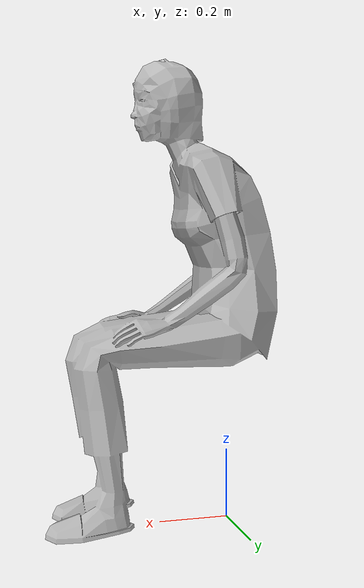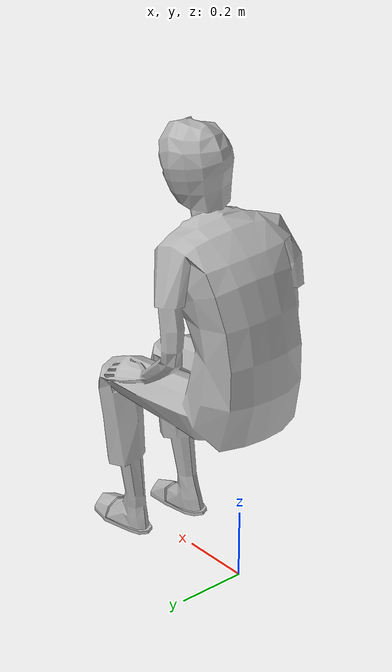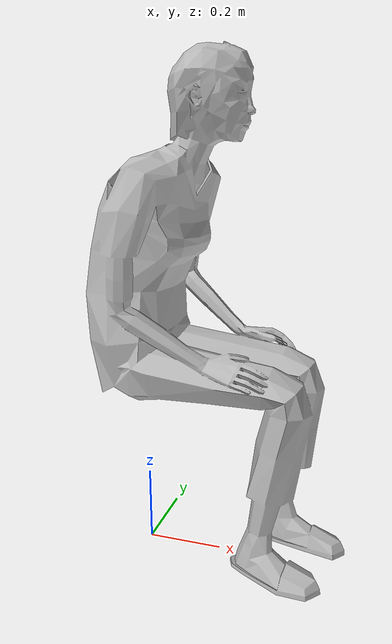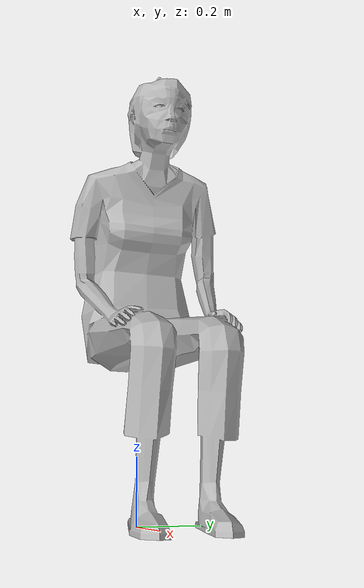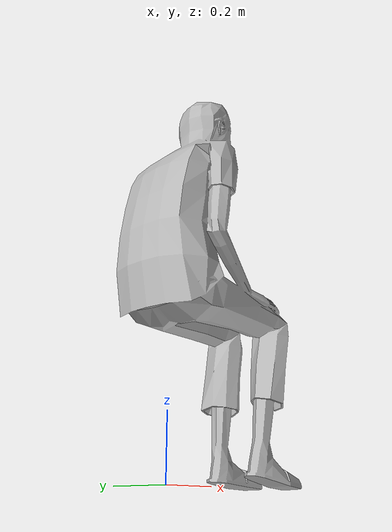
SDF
<?xml version='1.0' encoding='utf-8'?>
<sdf version="1.6">
  <model name="PatientFSit">
   <static>true</static>
    <link name="body">
      <pose>0 0 0 0 0 0</pose>

      <visual name="visual">
        <geometry>
          <mesh>
            <uri>model://PatientFSit/meshes/PatientFSit.obj</uri>
            <scale>1.1037 1.1037 1.1037</scale>
          </mesh>
        </geometry>
      </visual>

      <collision name="collision">
        <geometry>
          <mesh>
            <uri>model://PatientFSit/meshes/PatientFSit_Col.obj</uri>
            <scale>1.1037 1.1037 1.1037</scale>
          </mesh>
        </geometry>
      </collision>

    </link>
  </model>
</sdf>
